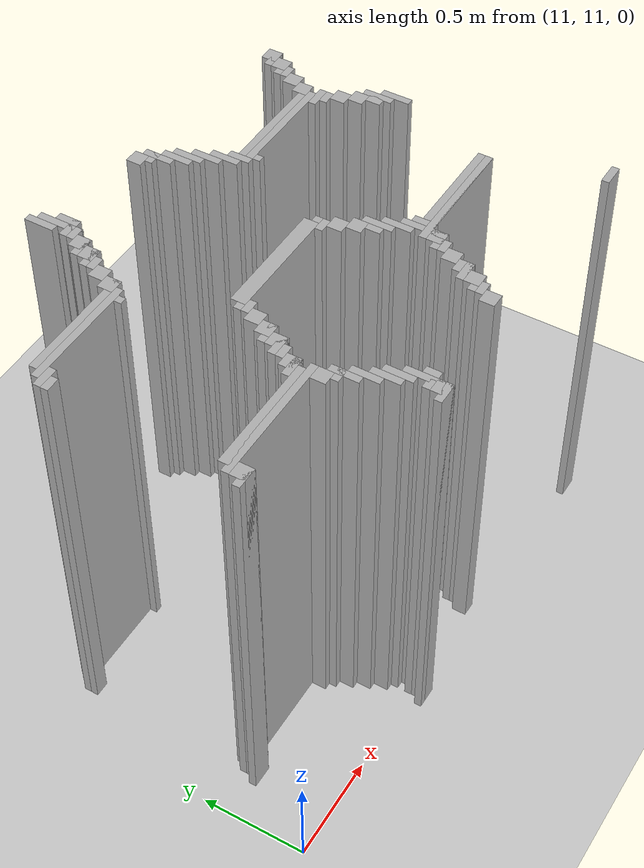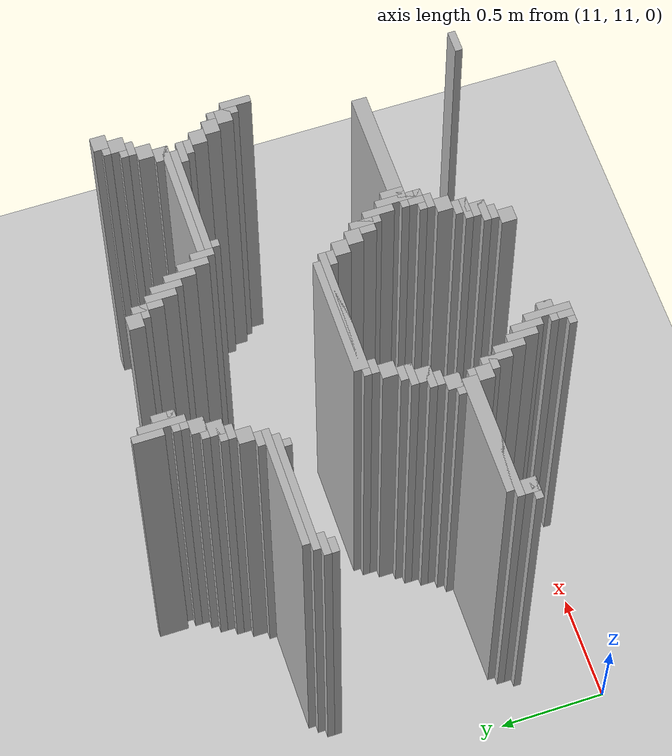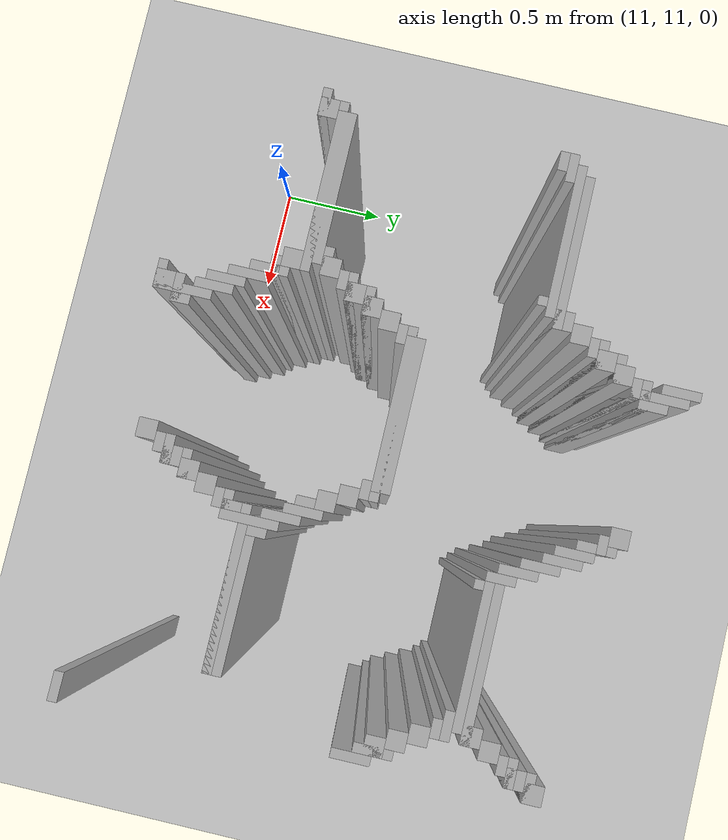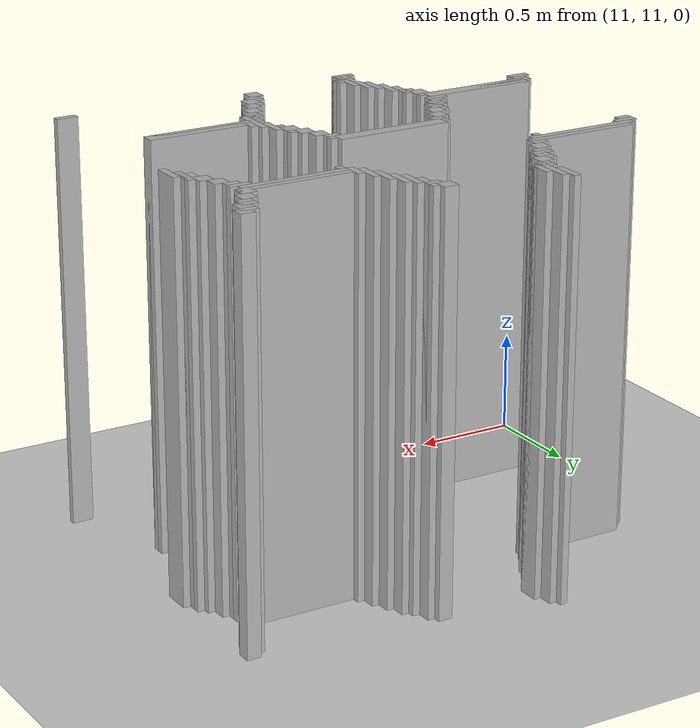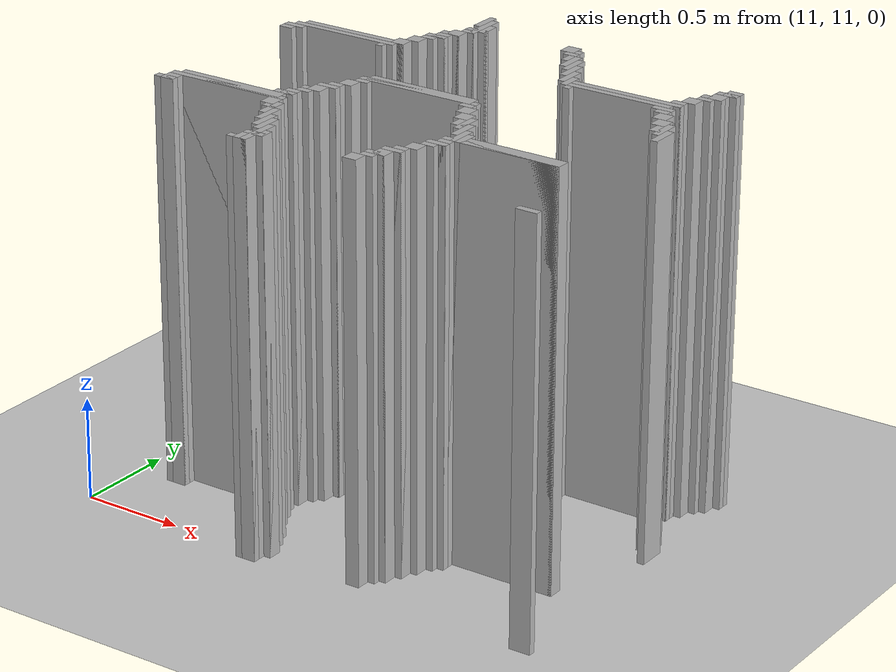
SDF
<sdf version="1.6">
 <world name="slam_world">
  <model name="ground_plane">
   <static>true</static>
   <link name="link">
    <collision name="collision">
     <geometry><plane><normal>0 0 1</normal><size>100 100</size></plane></geometry>
    </collision>
    <visual name="visual">
     <geometry><plane><normal>0 0 1</normal><size>100 100</size></plane></geometry>
     <material>
      <ambient>0.8 0.8 0.8 1</ambient>
      <diffuse>0.8 0.8 0.8 1</diffuse>
      <specular>0.8 0.8 0.8 1</specular>
     </material>
    </visual>
   </link>
  </model>
  <model name="wall_1478">
   <static>true</static>
   <pose>11.95475638051044 12.807424593967516 1.0 0 0 0</pose>
   <link name="link">
    <collision name="collision">
     <geometry><box><size>0.03480278422273782 0.13921113689095127 2.0</size></box></geometry>
    </collision>
    <visual name="visual">
     <geometry><box><size>0.03480278422273782 0.13921113689095127 2.0</size></box></geometry>
     <material><ambient>0.5 0.5 0.5 1</ambient><diffuse>0.7 0.7 0.7 1</diffuse></material>
    </visual>
   </link>
  </model>
  <model name="wall_1493">
   <static>true</static>
   <pose>11.989559164733178 12.737819025522041 1.0 0 0 0</pose>
   <link name="link">
    <collision name="collision">
     <geometry><box><size>0.03480278422273782 0.2088167053364269 2.0</size></box></geometry>
    </collision>
    <visual name="visual">
     <geometry><box><size>0.03480278422273782 0.2088167053364269 2.0</size></box></geometry>
     <material><ambient>0.5 0.5 0.5 1</ambient><diffuse>0.7 0.7 0.7 1</diffuse></material>
    </visual>
   </link>
  </model>
  <model name="wall_1516">
   <static>true</static>
   <pose>12.024361948955915 12.720417633410673 1.0 0 0 0</pose>
   <link name="link">
    <collision name="collision">
     <geometry><box><size>0.03480278422273782 0.10440835266821345 2.0</size></box></geometry>
    </collision>
    <visual name="visual">
     <geometry><box><size>0.03480278422273782 0.10440835266821345 2.0</size></box></geometry>
     <material><ambient>0.5 0.5 0.5 1</ambient><diffuse>0.7 0.7 0.7 1</diffuse></material>
    </visual>
   </link>
  </model>
  <model name="wall_1528">
   <static>true</static>
   <pose>12.494199535962876 12.703016241299304 1.0 0 0 0</pose>
   <link name="link">
    <collision name="collision">
     <geometry><box><size>0.06960556844547564 0.06960556844547564 2.0</size></box></geometry>
    </collision>
    <visual name="visual">
     <geometry><box><size>0.06960556844547564 0.06960556844547564 2.0</size></box></geometry>
     <material><ambient>0.5 0.5 0.5 1</ambient><diffuse>0.7 0.7 0.7 1</diffuse></material>
    </visual>
   </link>
  </model>
  <model name="wall_1539">
   <static>true</static>
   <pose>11.989559164733178 12.685614849187935 1.0 0 0 0</pose>
   <link name="link">
    <collision name="collision">
     <geometry><box><size>0.10440835266821345 0.03480278422273782 2.0</size></box></geometry>
    </collision>
    <visual name="visual">
     <geometry><box><size>0.10440835266821345 0.03480278422273782 2.0</size></box></geometry>
     <material><ambient>0.5 0.5 0.5 1</ambient><diffuse>0.7 0.7 0.7 1</diffuse></material>
    </visual>
   </link>
  </model>
  <model name="wall_1540">
   <static>true</static>
   <pose>12.546403712296984 12.633410672853827 1.0 0 0 0</pose>
   <link name="link">
    <collision name="collision">
     <geometry><box><size>0.03480278422273782 0.13921113689095127 2.0</size></box></geometry>
    </collision>
    <visual name="visual">
     <geometry><box><size>0.03480278422273782 0.13921113689095127 2.0</size></box></geometry>
     <material><ambient>0.5 0.5 0.5 1</ambient><diffuse>0.7 0.7 0.7 1</diffuse></material>
    </visual>
   </link>
  </model>
  <model name="wall_1552">
   <static>true</static>
   <pose>11.97215777262181 12.650812064965196 1.0 0 0 0</pose>
   <link name="link">
    <collision name="collision">
     <geometry><box><size>0.06960556844547564 0.03480278422273782 2.0</size></box></geometry>
    </collision>
    <visual name="visual">
     <geometry><box><size>0.06960556844547564 0.03480278422273782 2.0</size></box></geometry>
     <material><ambient>0.5 0.5 0.5 1</ambient><diffuse>0.7 0.7 0.7 1</diffuse></material>
    </visual>
   </link>
  </model>
  <model name="wall_1553">
   <static>true</static>
   <pose>12.529002320185615 12.650812064965196 1.0 0 0 0</pose>
   <link name="link">
    <collision name="collision">
     <geometry><box><size>0.06960556844547564 0.03480278422273782 2.0</size></box></geometry>
    </collision>
    <visual name="visual">
     <geometry><box><size>0.06960556844547564 0.03480278422273782 2.0</size></box></geometry>
     <material><ambient>0.5 0.5 0.5 1</ambient><diffuse>0.7 0.7 0.7 1</diffuse></material>
    </visual>
   </link>
  </model>
  <model name="wall_1564">
   <static>true</static>
   <pose>11.937354988399072 12.59860788863109 1.0 0 0 0</pose>
   <link name="link">
    <collision name="collision">
     <geometry><box><size>0.06960556844547564 0.06960556844547564 2.0</size></box></geometry>
    </collision>
    <visual name="visual">
     <geometry><box><size>0.06960556844547564 0.06960556844547564 2.0</size></box></geometry>
     <material><ambient>0.5 0.5 0.5 1</ambient><diffuse>0.7 0.7 0.7 1</diffuse></material>
    </visual>
   </link>
  </model>
  <model name="wall_1565">
   <static>true</static>
   <pose>12.581206496519721 12.563805104408353 1.0 0 0 0</pose>
   <link name="link">
    <collision name="collision">
     <geometry><box><size>0.03480278422273782 0.13921113689095127 2.0</size></box></geometry>
    </collision>
    <visual name="visual">
     <geometry><box><size>0.03480278422273782 0.13921113689095127 2.0</size></box></geometry>
     <material><ambient>0.5 0.5 0.5 1</ambient><diffuse>0.7 0.7 0.7 1</diffuse></material>
    </visual>
   </link>
  </model>
  <model name="wall_1566">
   <static>true</static>
   <pose>13.39907192575406 12.59860788863109 1.0 0 0 0</pose>
   <link name="link">
    <collision name="collision">
     <geometry><box><size>0.06960556844547564 0.06960556844547564 2.0</size></box></geometry>
    </collision>
    <visual name="visual">
     <geometry><box><size>0.06960556844547564 0.06960556844547564 2.0</size></box></geometry>
     <material><ambient>0.5 0.5 0.5 1</ambient><diffuse>0.7 0.7 0.7 1</diffuse></material>
    </visual>
   </link>
  </model>
  <model name="wall_1577">
   <static>true</static>
   <pose>11.919953596287703 12.581206496519721 1.0 0 0 0</pose>
   <link name="link">
    <collision name="collision">
     <geometry><box><size>0.10440835266821345 0.03480278422273782 2.0</size></box></geometry>
    </collision>
    <visual name="visual">
     <geometry><box><size>0.10440835266821345 0.03480278422273782 2.0</size></box></geometry>
     <material><ambient>0.5 0.5 0.5 1</ambient><diffuse>0.7 0.7 0.7 1</diffuse></material>
    </visual>
   </link>
  </model>
  <model name="wall_1578">
   <static>true</static>
   <pose>12.616009280742459 12.529002320185615 1.0 0 0 0</pose>
   <link name="link">
    <collision name="collision">
     <geometry><box><size>0.03480278422273782 0.13921113689095127 2.0</size></box></geometry>
    </collision>
    <visual name="visual">
     <geometry><box><size>0.03480278422273782 0.13921113689095127 2.0</size></box></geometry>
     <material><ambient>0.5 0.5 0.5 1</ambient><diffuse>0.7 0.7 0.7 1</diffuse></material>
    </visual>
   </link>
  </model>
  <model name="wall_1579">
   <static>true</static>
   <pose>13.38167053364269 12.581206496519721 1.0 0 0 0</pose>
   <link name="link">
    <collision name="collision">
     <geometry><box><size>0.10440835266821345 0.03480278422273782 2.0</size></box></geometry>
    </collision>
    <visual name="visual">
     <geometry><box><size>0.10440835266821345 0.03480278422273782 2.0</size></box></geometry>
     <material><ambient>0.5 0.5 0.5 1</ambient><diffuse>0.7 0.7 0.7 1</diffuse></material>
    </visual>
   </link>
  </model>
  <model name="wall_1589">
   <static>true</static>
   <pose>11.902552204176333 12.529002320185615 1.0 0 0 0</pose>
   <link name="link">
    <collision name="collision">
     <geometry><box><size>0.06960556844547564 0.06960556844547564 2.0</size></box></geometry>
    </collision>
    <visual name="visual">
     <geometry><box><size>0.06960556844547564 0.06960556844547564 2.0</size></box></geometry>
     <material><ambient>0.5 0.5 0.5 1</ambient><diffuse>0.7 0.7 0.7 1</diffuse></material>
    </visual>
   </link>
  </model>
  <model name="wall_1590">
   <static>true</static>
   <pose>13.364269141531322 12.529002320185615 1.0 0 0 0</pose>
   <link name="link">
    <collision name="collision">
     <geometry><box><size>0.06960556844547564 0.06960556844547564 2.0</size></box></geometry>
    </collision>
    <visual name="visual">
     <geometry><box><size>0.06960556844547564 0.06960556844547564 2.0</size></box></geometry>
     <material><ambient>0.5 0.5 0.5 1</ambient><diffuse>0.7 0.7 0.7 1</diffuse></material>
    </visual>
   </link>
  </model>
  <model name="wall_1601">
   <static>true</static>
   <pose>11.885150812064964 12.511600928074245 1.0 0 0 0</pose>
   <link name="link">
    <collision name="collision">
     <geometry><box><size>0.10440835266821345 0.03480278422273782 2.0</size></box></geometry>
    </collision>
    <visual name="visual">
     <geometry><box><size>0.10440835266821345 0.03480278422273782 2.0</size></box></geometry>
     <material><ambient>0.5 0.5 0.5 1</ambient><diffuse>0.7 0.7 0.7 1</diffuse></material>
    </visual>
   </link>
  </model>
  <model name="wall_1602">
   <static>true</static>
   <pose>12.650812064965196 12.459396751740138 1.0 0 0 0</pose>
   <link name="link">
    <collision name="collision">
     <geometry><box><size>0.03480278422273782 0.13921113689095127 2.0</size></box></geometry>
    </collision>
    <visual name="visual">
     <geometry><box><size>0.03480278422273782 0.13921113689095127 2.0</size></box></geometry>
     <material><ambient>0.5 0.5 0.5 1</ambient><diffuse>0.7 0.7 0.7 1</diffuse></material>
    </visual>
   </link>
  </model>
  <model name="wall_1603">
   <static>true</static>
   <pose>13.346867749419953 12.511600928074245 1.0 0 0 0</pose>
   <link name="link">
    <collision name="collision">
     <geometry><box><size>0.10440835266821345 0.03480278422273782 2.0</size></box></geometry>
    </collision>
    <visual name="visual">
     <geometry><box><size>0.10440835266821345 0.03480278422273782 2.0</size></box></geometry>
     <material><ambient>0.5 0.5 0.5 1</ambient><diffuse>0.7 0.7 0.7 1</diffuse></material>
    </visual>
   </link>
  </model>
  <model name="wall_1609">
   <static>true</static>
   <pose>11.867749419953595 12.476798143851507 1.0 0 0 0</pose>
   <link name="link">
    <collision name="collision">
     <geometry><box><size>0.06960556844547564 0.03480278422273782 2.0</size></box></geometry>
    </collision>
    <visual name="visual">
     <geometry><box><size>0.06960556844547564 0.03480278422273782 2.0</size></box></geometry>
     <material><ambient>0.5 0.5 0.5 1</ambient><diffuse>0.7 0.7 0.7 1</diffuse></material>
    </visual>
   </link>
  </model>
  <model name="wall_1610">
   <static>true</static>
   <pose>13.329466357308585 12.476798143851507 1.0 0 0 0</pose>
   <link name="link">
    <collision name="collision">
     <geometry><box><size>0.06960556844547564 0.03480278422273782 2.0</size></box></geometry>
    </collision>
    <visual name="visual">
     <geometry><box><size>0.06960556844547564 0.03480278422273782 2.0</size></box></geometry>
     <material><ambient>0.5 0.5 0.5 1</ambient><diffuse>0.7 0.7 0.7 1</diffuse></material>
    </visual>
   </link>
  </model>
  <model name="wall_1621">
   <static>true</static>
   <pose>11.832946635730858 12.424593967517401 1.0 0 0 0</pose>
   <link name="link">
    <collision name="collision">
     <geometry><box><size>0.06960556844547564 0.06960556844547564 2.0</size></box></geometry>
    </collision>
    <visual name="visual">
     <geometry><box><size>0.06960556844547564 0.06960556844547564 2.0</size></box></geometry>
     <material><ambient>0.5 0.5 0.5 1</ambient><diffuse>0.7 0.7 0.7 1</diffuse></material>
    </visual>
   </link>
  </model>
  <model name="wall_1622">
   <static>true</static>
   <pose>12.685614849187935 12.389791183294664 1.0 0 0 0</pose>
   <link name="link">
    <collision name="collision">
     <geometry><box><size>0.03480278422273782 0.13921113689095127 2.0</size></box></geometry>
    </collision>
    <visual name="visual">
     <geometry><box><size>0.03480278422273782 0.13921113689095127 2.0</size></box></geometry>
     <material><ambient>0.5 0.5 0.5 1</ambient><diffuse>0.7 0.7 0.7 1</diffuse></material>
    </visual>
   </link>
  </model>
  <model name="wall_1623">
   <static>true</static>
   <pose>13.294663573085847 12.424593967517401 1.0 0 0 0</pose>
   <link name="link">
    <collision name="collision">
     <geometry><box><size>0.06960556844547564 0.06960556844547564 2.0</size></box></geometry>
    </collision>
    <visual name="visual">
     <geometry><box><size>0.06960556844547564 0.06960556844547564 2.0</size></box></geometry>
     <material><ambient>0.5 0.5 0.5 1</ambient><diffuse>0.7 0.7 0.7 1</diffuse></material>
    </visual>
   </link>
  </model>
  <model name="wall_1634">
   <static>true</static>
   <pose>11.79814385150812 12.354988399071924 1.0 0 0 0</pose>
   <link name="link">
    <collision name="collision">
     <geometry><box><size>0.06960556844547564 0.06960556844547564 2.0</size></box></geometry>
    </collision>
    <visual name="visual">
     <geometry><box><size>0.06960556844547564 0.06960556844547564 2.0</size></box></geometry>
     <material><ambient>0.5 0.5 0.5 1</ambient><diffuse>0.7 0.7 0.7 1</diffuse></material>
    </visual>
   </link>
  </model>
  <model name="wall_1635">
   <static>true</static>
   <pose>12.720417633410673 12.337587006960556 1.0 0 0 0</pose>
   <link name="link">
    <collision name="collision">
     <geometry><box><size>0.03480278422273782 0.10440835266821345 2.0</size></box></geometry>
    </collision>
    <visual name="visual">
     <geometry><box><size>0.03480278422273782 0.10440835266821345 2.0</size></box></geometry>
     <material><ambient>0.5 0.5 0.5 1</ambient><diffuse>0.7 0.7 0.7 1</diffuse></material>
    </visual>
   </link>
  </model>
  <model name="wall_1636">
   <static>true</static>
   <pose>13.259860788863108 12.354988399071924 1.0 0 0 0</pose>
   <link name="link">
    <collision name="collision">
     <geometry><box><size>0.06960556844547564 0.06960556844547564 2.0</size></box></geometry>
    </collision>
    <visual name="visual">
     <geometry><box><size>0.06960556844547564 0.06960556844547564 2.0</size></box></geometry>
     <material><ambient>0.5 0.5 0.5 1</ambient><diffuse>0.7 0.7 0.7 1</diffuse></material>
    </visual>
   </link>
  </model>
  <model name="wall_1647">
   <static>true</static>
   <pose>11.554524361948955 12.337587006960556 1.0 0 0 0</pose>
   <link name="link">
    <collision name="collision">
     <geometry><box><size>0.5568445475638051 0.03480278422273782 2.0</size></box></geometry>
    </collision>
    <visual name="visual">
     <geometry><box><size>0.5568445475638051 0.03480278422273782 2.0</size></box></geometry>
     <material><ambient>0.5 0.5 0.5 1</ambient><diffuse>0.7 0.7 0.7 1</diffuse></material>
    </visual>
   </link>
  </model>
  <model name="wall_1648">
   <static>true</static>
   <pose>13.016241299303944 12.337587006960556 1.0 0 0 0</pose>
   <link name="link">
    <collision name="collision">
     <geometry><box><size>0.5568445475638051 0.03480278422273782 2.0</size></box></geometry>
    </collision>
    <visual name="visual">
     <geometry><box><size>0.5568445475638051 0.03480278422273782 2.0</size></box></geometry>
     <material><ambient>0.5 0.5 0.5 1</ambient><diffuse>0.7 0.7 0.7 1</diffuse></material>
    </visual>
   </link>
  </model>
  <model name="wall_1658">
   <static>true</static>
   <pose>11.519721577726218 12.302784222737818 1.0 0 0 0</pose>
   <link name="link">
    <collision name="collision">
     <geometry><box><size>0.5568445475638051 0.03480278422273782 2.0</size></box></geometry>
    </collision>
    <visual name="visual">
     <geometry><box><size>0.5568445475638051 0.03480278422273782 2.0</size></box></geometry>
     <material><ambient>0.5 0.5 0.5 1</ambient><diffuse>0.7 0.7 0.7 1</diffuse></material>
    </visual>
   </link>
  </model>
  <model name="wall_1659">
   <static>true</static>
   <pose>12.998839907192576 12.302784222737818 1.0 0 0 0</pose>
   <link name="link">
    <collision name="collision">
     <geometry><box><size>0.5220417633410672 0.03480278422273782 2.0</size></box></geometry>
    </collision>
    <visual name="visual">
     <geometry><box><size>0.5220417633410672 0.03480278422273782 2.0</size></box></geometry>
     <material><ambient>0.5 0.5 0.5 1</ambient><diffuse>0.7 0.7 0.7 1</diffuse></material>
    </visual>
   </link>
  </model>
  <model name="wall_1675">
   <static>true</static>
   <pose>11.258700696055683 12.267981438515081 1.0 0 0 0</pose>
   <link name="link">
    <collision name="collision">
     <geometry><box><size>0.10440835266821345 0.03480278422273782 2.0</size></box></geometry>
    </collision>
    <visual name="visual">
     <geometry><box><size>0.10440835266821345 0.03480278422273782 2.0</size></box></geometry>
     <material><ambient>0.5 0.5 0.5 1</ambient><diffuse>0.7 0.7 0.7 1</diffuse></material>
    </visual>
   </link>
  </model>
  <model name="wall_1676">
   <static>true</static>
   <pose>11.745939675174013 12.267981438515081 1.0 0 0 0</pose>
   <link name="link">
    <collision name="collision">
     <geometry><box><size>0.03480278422273782 0.03480278422273782 2.0</size></box></geometry>
    </collision>
    <visual name="visual">
     <geometry><box><size>0.03480278422273782 0.03480278422273782 2.0</size></box></geometry>
     <material><ambient>0.5 0.5 0.5 1</ambient><diffuse>0.7 0.7 0.7 1</diffuse></material>
    </visual>
   </link>
  </model>
  <model name="wall_1677">
   <static>true</static>
   <pose>12.75522041763341 12.267981438515081 1.0 0 0 0</pose>
   <link name="link">
    <collision name="collision">
     <geometry><box><size>0.03480278422273782 0.03480278422273782 2.0</size></box></geometry>
    </collision>
    <visual name="visual">
     <geometry><box><size>0.03480278422273782 0.03480278422273782 2.0</size></box></geometry>
     <material><ambient>0.5 0.5 0.5 1</ambient><diffuse>0.7 0.7 0.7 1</diffuse></material>
    </visual>
   </link>
  </model>
  <model name="wall_1678">
   <static>true</static>
   <pose>13.24245939675174 12.267981438515081 1.0 0 0 0</pose>
   <link name="link">
    <collision name="collision">
     <geometry><box><size>0.10440835266821345 0.03480278422273782 2.0</size></box></geometry>
    </collision>
    <visual name="visual">
     <geometry><box><size>0.10440835266821345 0.03480278422273782 2.0</size></box></geometry>
     <material><ambient>0.5 0.5 0.5 1</ambient><diffuse>0.7 0.7 0.7 1</diffuse></material>
    </visual>
   </link>
  </model>
  <model name="wall_1691">
   <static>true</static>
   <pose>11.241299303944315 12.233178654292344 1.0 0 0 0</pose>
   <link name="link">
    <collision name="collision">
     <geometry><box><size>0.06960556844547564 0.03480278422273782 2.0</size></box></geometry>
    </collision>
    <visual name="visual">
     <geometry><box><size>0.06960556844547564 0.03480278422273782 2.0</size></box></geometry>
     <material><ambient>0.5 0.5 0.5 1</ambient><diffuse>0.7 0.7 0.7 1</diffuse></material>
    </visual>
   </link>
  </model>
  <model name="wall_1692">
   <static>true</static>
   <pose>13.259860788863108 12.233178654292344 1.0 0 0 0</pose>
   <link name="link">
    <collision name="collision">
     <geometry><box><size>0.06960556844547564 0.03480278422273782 2.0</size></box></geometry>
    </collision>
    <visual name="visual">
     <geometry><box><size>0.06960556844547564 0.03480278422273782 2.0</size></box></geometry>
     <material><ambient>0.5 0.5 0.5 1</ambient><diffuse>0.7 0.7 0.7 1</diffuse></material>
    </visual>
   </link>
  </model>
  <model name="wall_1706">
   <static>true</static>
   <pose>13.294663573085847 12.180974477958236 1.0 0 0 0</pose>
   <link name="link">
    <collision name="collision">
     <geometry><box><size>0.06960556844547564 0.06960556844547564 2.0</size></box></geometry>
    </collision>
    <visual name="visual">
     <geometry><box><size>0.06960556844547564 0.06960556844547564 2.0</size></box></geometry>
     <material><ambient>0.5 0.5 0.5 1</ambient><diffuse>0.7 0.7 0.7 1</diffuse></material>
    </visual>
   </link>
  </model>
  <model name="wall_1720">
   <static>true</static>
   <pose>13.329466357308585 12.11136890951276 1.0 0 0 0</pose>
   <link name="link">
    <collision name="collision">
     <geometry><box><size>0.06960556844547564 0.06960556844547564 2.0</size></box></geometry>
    </collision>
    <visual name="visual">
     <geometry><box><size>0.06960556844547564 0.06960556844547564 2.0</size></box></geometry>
     <material><ambient>0.5 0.5 0.5 1</ambient><diffuse>0.7 0.7 0.7 1</diffuse></material>
    </visual>
   </link>
  </model>
  <model name="wall_1734">
   <static>true</static>
   <pose>13.38167053364269 12.041763341067284 1.0 0 0 0</pose>
   <link name="link">
    <collision name="collision">
     <geometry><box><size>0.03480278422273782 0.13921113689095127 2.0</size></box></geometry>
    </collision>
    <visual name="visual">
     <geometry><box><size>0.03480278422273782 0.13921113689095127 2.0</size></box></geometry>
     <material><ambient>0.5 0.5 0.5 1</ambient><diffuse>0.7 0.7 0.7 1</diffuse></material>
    </visual>
   </link>
  </model>
  <model name="wall_1745">
   <static>true</static>
   <pose>13.364269141531322 12.041763341067284 1.0 0 0 0</pose>
   <link name="link">
    <collision name="collision">
     <geometry><box><size>0.06960556844547564 0.06960556844547564 2.0</size></box></geometry>
    </collision>
    <visual name="visual">
     <geometry><box><size>0.06960556844547564 0.06960556844547564 2.0</size></box></geometry>
     <material><ambient>0.5 0.5 0.5 1</ambient><diffuse>0.7 0.7 0.7 1</diffuse></material>
    </visual>
   </link>
  </model>
  <model name="wall_1758">
   <static>true</static>
   <pose>13.416473317865428 11.97215777262181 1.0 0 0 0</pose>
   <link name="link">
    <collision name="collision">
     <geometry><box><size>0.03480278422273782 0.13921113689095127 2.0</size></box></geometry>
    </collision>
    <visual name="visual">
     <geometry><box><size>0.03480278422273782 0.13921113689095127 2.0</size></box></geometry>
     <material><ambient>0.5 0.5 0.5 1</ambient><diffuse>0.7 0.7 0.7 1</diffuse></material>
    </visual>
   </link>
  </model>
  <model name="wall_1806">
   <static>true</static>
   <pose>12.250580046403712 11.867749419953595 1.0 0 0 0</pose>
   <link name="link">
    <collision name="collision">
     <geometry><box><size>0.5568445475638051 0.06960556844547564 2.0</size></box></geometry>
    </collision>
    <visual name="visual">
     <geometry><box><size>0.5568445475638051 0.06960556844547564 2.0</size></box></geometry>
     <material><ambient>0.5 0.5 0.5 1</ambient><diffuse>0.7 0.7 0.7 1</diffuse></material>
    </visual>
   </link>
  </model>
  <model name="wall_1818">
   <static>true</static>
   <pose>12.250580046403712 11.850348027842227 1.0 0 0 0</pose>
   <link name="link">
    <collision name="collision">
     <geometry><box><size>0.6264501160092807 0.03480278422273782 2.0</size></box></geometry>
    </collision>
    <visual name="visual">
     <geometry><box><size>0.6264501160092807 0.03480278422273782 2.0</size></box></geometry>
     <material><ambient>0.5 0.5 0.5 1</ambient><diffuse>0.7 0.7 0.7 1</diffuse></material>
    </visual>
   </link>
  </model>
  <model name="wall_1831">
   <static>true</static>
   <pose>11.97215777262181 11.81554524361949 1.0 0 0 0</pose>
   <link name="link">
    <collision name="collision">
     <geometry><box><size>0.06960556844547564 0.03480278422273782 2.0</size></box></geometry>
    </collision>
    <visual name="visual">
     <geometry><box><size>0.06960556844547564 0.03480278422273782 2.0</size></box></geometry>
     <material><ambient>0.5 0.5 0.5 1</ambient><diffuse>0.7 0.7 0.7 1</diffuse></material>
    </visual>
   </link>
  </model>
  <model name="wall_1832">
   <static>true</static>
   <pose>12.529002320185615 11.81554524361949 1.0 0 0 0</pose>
   <link name="link">
    <collision name="collision">
     <geometry><box><size>0.06960556844547564 0.03480278422273782 2.0</size></box></geometry>
    </collision>
    <visual name="visual">
     <geometry><box><size>0.06960556844547564 0.03480278422273782 2.0</size></box></geometry>
     <material><ambient>0.5 0.5 0.5 1</ambient><diffuse>0.7 0.7 0.7 1</diffuse></material>
    </visual>
   </link>
  </model>
  <model name="wall_1845">
   <static>true</static>
   <pose>11.937354988399072 11.763341067285383 1.0 0 0 0</pose>
   <link name="link">
    <collision name="collision">
     <geometry><box><size>0.06960556844547564 0.06960556844547564 2.0</size></box></geometry>
    </collision>
    <visual name="visual">
     <geometry><box><size>0.06960556844547564 0.06960556844547564 2.0</size></box></geometry>
     <material><ambient>0.5 0.5 0.5 1</ambient><diffuse>0.7 0.7 0.7 1</diffuse></material>
    </visual>
   </link>
  </model>
  <model name="wall_1846">
   <static>true</static>
   <pose>12.563805104408353 11.763341067285383 1.0 0 0 0</pose>
   <link name="link">
    <collision name="collision">
     <geometry><box><size>0.06960556844547564 0.06960556844547564 2.0</size></box></geometry>
    </collision>
    <visual name="visual">
     <geometry><box><size>0.06960556844547564 0.06960556844547564 2.0</size></box></geometry>
     <material><ambient>0.5 0.5 0.5 1</ambient><diffuse>0.7 0.7 0.7 1</diffuse></material>
    </visual>
   </link>
  </model>
  <model name="wall_1859">
   <static>true</static>
   <pose>11.902552204176333 11.693735498839906 1.0 0 0 0</pose>
   <link name="link">
    <collision name="collision">
     <geometry><box><size>0.06960556844547564 0.06960556844547564 2.0</size></box></geometry>
    </collision>
    <visual name="visual">
     <geometry><box><size>0.06960556844547564 0.06960556844547564 2.0</size></box></geometry>
     <material><ambient>0.5 0.5 0.5 1</ambient><diffuse>0.7 0.7 0.7 1</diffuse></material>
    </visual>
   </link>
  </model>
  <model name="wall_1860">
   <static>true</static>
   <pose>12.59860788863109 11.693735498839906 1.0 0 0 0</pose>
   <link name="link">
    <collision name="collision">
     <geometry><box><size>0.06960556844547564 0.06960556844547564 2.0</size></box></geometry>
    </collision>
    <visual name="visual">
     <geometry><box><size>0.06960556844547564 0.06960556844547564 2.0</size></box></geometry>
     <material><ambient>0.5 0.5 0.5 1</ambient><diffuse>0.7 0.7 0.7 1</diffuse></material>
    </visual>
   </link>
  </model>
  <model name="wall_1873">
   <static>true</static>
   <pose>11.885150812064964 11.676334106728538 1.0 0 0 0</pose>
   <link name="link">
    <collision name="collision">
     <geometry><box><size>0.10440835266821345 0.03480278422273782 2.0</size></box></geometry>
    </collision>
    <visual name="visual">
     <geometry><box><size>0.10440835266821345 0.03480278422273782 2.0</size></box></geometry>
     <material><ambient>0.5 0.5 0.5 1</ambient><diffuse>0.7 0.7 0.7 1</diffuse></material>
    </visual>
   </link>
  </model>
  <model name="wall_1874">
   <static>true</static>
   <pose>12.650812064965196 11.624129930394432 1.0 0 0 0</pose>
   <link name="link">
    <collision name="collision">
     <geometry><box><size>0.03480278422273782 0.13921113689095127 2.0</size></box></geometry>
    </collision>
    <visual name="visual">
     <geometry><box><size>0.03480278422273782 0.13921113689095127 2.0</size></box></geometry>
     <material><ambient>0.5 0.5 0.5 1</ambient><diffuse>0.7 0.7 0.7 1</diffuse></material>
    </visual>
   </link>
  </model>
  <model name="wall_1883">
   <static>true</static>
   <pose>11.867749419953595 11.624129930394432 1.0 0 0 0</pose>
   <link name="link">
    <collision name="collision">
     <geometry><box><size>0.06960556844547564 0.06960556844547564 2.0</size></box></geometry>
    </collision>
    <visual name="visual">
     <geometry><box><size>0.06960556844547564 0.06960556844547564 2.0</size></box></geometry>
     <material><ambient>0.5 0.5 0.5 1</ambient><diffuse>0.7 0.7 0.7 1</diffuse></material>
    </visual>
   </link>
  </model>
  <model name="wall_1884">
   <static>true</static>
   <pose>12.633410672853827 11.624129930394432 1.0 0 0 0</pose>
   <link name="link">
    <collision name="collision">
     <geometry><box><size>0.06960556844547564 0.06960556844547564 2.0</size></box></geometry>
    </collision>
    <visual name="visual">
     <geometry><box><size>0.06960556844547564 0.06960556844547564 2.0</size></box></geometry>
     <material><ambient>0.5 0.5 0.5 1</ambient><diffuse>0.7 0.7 0.7 1</diffuse></material>
    </visual>
   </link>
  </model>
  <model name="wall_1896">
   <static>true</static>
   <pose>11.850348027842227 11.606728538283063 1.0 0 0 0</pose>
   <link name="link">
    <collision name="collision">
     <geometry><box><size>0.10440835266821345 0.03480278422273782 2.0</size></box></geometry>
    </collision>
    <visual name="visual">
     <geometry><box><size>0.10440835266821345 0.03480278422273782 2.0</size></box></geometry>
     <material><ambient>0.5 0.5 0.5 1</ambient><diffuse>0.7 0.7 0.7 1</diffuse></material>
    </visual>
   </link>
  </model>
  <model name="wall_1897">
   <static>true</static>
   <pose>12.685614849187935 11.554524361948955 1.0 0 0 0</pose>
   <link name="link">
    <collision name="collision">
     <geometry><box><size>0.03480278422273782 0.13921113689095127 2.0</size></box></geometry>
    </collision>
    <visual name="visual">
     <geometry><box><size>0.03480278422273782 0.13921113689095127 2.0</size></box></geometry>
     <material><ambient>0.5 0.5 0.5 1</ambient><diffuse>0.7 0.7 0.7 1</diffuse></material>
    </visual>
   </link>
  </model>
  <model name="wall_1904">
   <static>true</static>
   <pose>11.832946635730858 11.571925754060324 1.0 0 0 0</pose>
   <link name="link">
    <collision name="collision">
     <geometry><box><size>0.06960556844547564 0.03480278422273782 2.0</size></box></geometry>
    </collision>
    <visual name="visual">
     <geometry><box><size>0.06960556844547564 0.03480278422273782 2.0</size></box></geometry>
     <material><ambient>0.5 0.5 0.5 1</ambient><diffuse>0.7 0.7 0.7 1</diffuse></material>
    </visual>
   </link>
  </model>
  <model name="wall_1916">
   <static>true</static>
   <pose>11.79814385150812 11.519721577726218 1.0 0 0 0</pose>
   <link name="link">
    <collision name="collision">
     <geometry><box><size>0.06960556844547564 0.06960556844547564 2.0</size></box></geometry>
    </collision>
    <visual name="visual">
     <geometry><box><size>0.06960556844547564 0.06960556844547564 2.0</size></box></geometry>
     <material><ambient>0.5 0.5 0.5 1</ambient><diffuse>0.7 0.7 0.7 1</diffuse></material>
    </visual>
   </link>
  </model>
  <model name="wall_1917">
   <static>true</static>
   <pose>12.720417633410673 11.450116009280743 1.0 0 0 0</pose>
   <link name="link">
    <collision name="collision">
     <geometry><box><size>0.03480278422273782 0.2088167053364269 2.0</size></box></geometry>
    </collision>
    <visual name="visual">
     <geometry><box><size>0.03480278422273782 0.2088167053364269 2.0</size></box></geometry>
     <material><ambient>0.5 0.5 0.5 1</ambient><diffuse>0.7 0.7 0.7 1</diffuse></material>
    </visual>
   </link>
  </model>
  <model name="wall_1929">
   <static>true</static>
   <pose>11.780742459396752 11.502320185614849 1.0 0 0 0</pose>
   <link name="link">
    <collision name="collision">
     <geometry><box><size>0.10440835266821345 0.03480278422273782 2.0</size></box></geometry>
    </collision>
    <visual name="visual">
     <geometry><box><size>0.10440835266821345 0.03480278422273782 2.0</size></box></geometry>
     <material><ambient>0.5 0.5 0.5 1</ambient><diffuse>0.7 0.7 0.7 1</diffuse></material>
    </visual>
   </link>
  </model>
  <model name="wall_1930">
   <static>true</static>
   <pose>12.75522041763341 11.467517401392112 1.0 0 0 0</pose>
   <link name="link">
    <collision name="collision">
     <geometry><box><size>0.03480278422273782 0.10440835266821345 2.0</size></box></geometry>
    </collision>
    <visual name="visual">
     <geometry><box><size>0.03480278422273782 0.10440835266821345 2.0</size></box></geometry>
     <material><ambient>0.5 0.5 0.5 1</ambient><diffuse>0.7 0.7 0.7 1</diffuse></material>
    </visual>
   </link>
  </model>
  <model name="wall_1941">
   <static>true</static>
   <pose>11.519721577726218 11.450116009280743 1.0 0 0 0</pose>
   <link name="link">
    <collision name="collision">
     <geometry><box><size>0.5568445475638051 0.06960556844547564 2.0</size></box></geometry>
    </collision>
    <visual name="visual">
     <geometry><box><size>0.5568445475638051 0.06960556844547564 2.0</size></box></geometry>
     <material><ambient>0.5 0.5 0.5 1</ambient><diffuse>0.7 0.7 0.7 1</diffuse></material>
    </visual>
   </link>
  </model>
  <model name="wall_1942">
   <static>true</static>
   <pose>13.016241299303944 11.450116009280743 1.0 0 0 0</pose>
   <link name="link">
    <collision name="collision">
     <geometry><box><size>0.4872389791183295 0.06960556844547564 2.0</size></box></geometry>
    </collision>
    <visual name="visual">
     <geometry><box><size>0.4872389791183295 0.06960556844547564 2.0</size></box></geometry>
     <material><ambient>0.5 0.5 0.5 1</ambient><diffuse>0.7 0.7 0.7 1</diffuse></material>
    </visual>
   </link>
  </model>
  <model name="wall_1954">
   <static>true</static>
   <pose>11.519721577726218 11.432714617169372 1.0 0 0 0</pose>
   <link name="link">
    <collision name="collision">
     <geometry><box><size>0.6264501160092807 0.03480278422273782 2.0</size></box></geometry>
    </collision>
    <visual name="visual">
     <geometry><box><size>0.6264501160092807 0.03480278422273782 2.0</size></box></geometry>
     <material><ambient>0.5 0.5 0.5 1</ambient><diffuse>0.7 0.7 0.7 1</diffuse></material>
    </visual>
   </link>
  </model>
  <model name="wall_1955">
   <static>true</static>
   <pose>12.964037122969836 11.432714617169372 1.0 0 0 0</pose>
   <link name="link">
    <collision name="collision">
     <geometry><box><size>0.5916473317865429 0.03480278422273782 2.0</size></box></geometry>
    </collision>
    <visual name="visual">
     <geometry><box><size>0.5916473317865429 0.03480278422273782 2.0</size></box></geometry>
     <material><ambient>0.5 0.5 0.5 1</ambient><diffuse>0.7 0.7 0.7 1</diffuse></material>
    </visual>
   </link>
  </model>
  <model name="wall_1970">
   <static>true</static>
   <pose>11.241299303944315 11.380510440835266 1.0 0 0 0</pose>
   <link name="link">
    <collision name="collision">
     <geometry><box><size>0.06960556844547564 0.06960556844547564 2.0</size></box></geometry>
    </collision>
    <visual name="visual">
     <geometry><box><size>0.06960556844547564 0.06960556844547564 2.0</size></box></geometry>
     <material><ambient>0.5 0.5 0.5 1</ambient><diffuse>0.7 0.7 0.7 1</diffuse></material>
    </visual>
   </link>
  </model>
  <model name="wall_1971">
   <static>true</static>
   <pose>11.79814385150812 11.380510440835266 1.0 0 0 0</pose>
   <link name="link">
    <collision name="collision">
     <geometry><box><size>0.06960556844547564 0.06960556844547564 2.0</size></box></geometry>
    </collision>
    <visual name="visual">
     <geometry><box><size>0.06960556844547564 0.06960556844547564 2.0</size></box></geometry>
     <material><ambient>0.5 0.5 0.5 1</ambient><diffuse>0.7 0.7 0.7 1</diffuse></material>
    </visual>
   </link>
  </model>
  <model name="wall_1972">
   <static>true</static>
   <pose>12.703016241299304 11.380510440835266 1.0 0 0 0</pose>
   <link name="link">
    <collision name="collision">
     <geometry><box><size>0.06960556844547564 0.06960556844547564 2.0</size></box></geometry>
    </collision>
    <visual name="visual">
     <geometry><box><size>0.06960556844547564 0.06960556844547564 2.0</size></box></geometry>
     <material><ambient>0.5 0.5 0.5 1</ambient><diffuse>0.7 0.7 0.7 1</diffuse></material>
    </visual>
   </link>
  </model>
  <model name="wall_1987">
   <static>true</static>
   <pose>11.223897911832946 11.363109048723897 1.0 0 0 0</pose>
   <link name="link">
    <collision name="collision">
     <geometry><box><size>0.10440835266821345 0.03480278422273782 2.0</size></box></geometry>
    </collision>
    <visual name="visual">
     <geometry><box><size>0.10440835266821345 0.03480278422273782 2.0</size></box></geometry>
     <material><ambient>0.5 0.5 0.5 1</ambient><diffuse>0.7 0.7 0.7 1</diffuse></material>
    </visual>
   </link>
  </model>
  <model name="wall_1988">
   <static>true</static>
   <pose>11.850348027842227 11.310904872389791 1.0 0 0 0</pose>
   <link name="link">
    <collision name="collision">
     <geometry><box><size>0.03480278422273782 0.13921113689095127 2.0</size></box></geometry>
    </collision>
    <visual name="visual">
     <geometry><box><size>0.03480278422273782 0.13921113689095127 2.0</size></box></geometry>
     <material><ambient>0.5 0.5 0.5 1</ambient><diffuse>0.7 0.7 0.7 1</diffuse></material>
    </visual>
   </link>
  </model>
  <model name="wall_1989">
   <static>true</static>
   <pose>12.685614849187935 11.363109048723897 1.0 0 0 0</pose>
   <link name="link">
    <collision name="collision">
     <geometry><box><size>0.10440835266821345 0.03480278422273782 2.0</size></box></geometry>
    </collision>
    <visual name="visual">
     <geometry><box><size>0.10440835266821345 0.03480278422273782 2.0</size></box></geometry>
     <material><ambient>0.5 0.5 0.5 1</ambient><diffuse>0.7 0.7 0.7 1</diffuse></material>
    </visual>
   </link>
  </model>
  <model name="wall_2001">
   <static>true</static>
   <pose>11.832946635730858 11.32830626450116 1.0 0 0 0</pose>
   <link name="link">
    <collision name="collision">
     <geometry><box><size>0.06960556844547564 0.03480278422273782 2.0</size></box></geometry>
    </collision>
    <visual name="visual">
     <geometry><box><size>0.06960556844547564 0.03480278422273782 2.0</size></box></geometry>
     <material><ambient>0.5 0.5 0.5 1</ambient><diffuse>0.7 0.7 0.7 1</diffuse></material>
    </visual>
   </link>
  </model>
  <model name="wall_2002">
   <static>true</static>
   <pose>12.668213457076565 11.32830626450116 1.0 0 0 0</pose>
   <link name="link">
    <collision name="collision">
     <geometry><box><size>0.06960556844547564 0.03480278422273782 2.0</size></box></geometry>
    </collision>
    <visual name="visual">
     <geometry><box><size>0.06960556844547564 0.03480278422273782 2.0</size></box></geometry>
     <material><ambient>0.5 0.5 0.5 1</ambient><diffuse>0.7 0.7 0.7 1</diffuse></material>
    </visual>
   </link>
  </model>
  <model name="wall_2017">
   <static>true</static>
   <pose>11.885150812064964 11.241299303944315 1.0 0 0 0</pose>
   <link name="link">
    <collision name="collision">
     <geometry><box><size>0.03480278422273782 0.13921113689095127 2.0</size></box></geometry>
    </collision>
    <visual name="visual">
     <geometry><box><size>0.03480278422273782 0.13921113689095127 2.0</size></box></geometry>
     <material><ambient>0.5 0.5 0.5 1</ambient><diffuse>0.7 0.7 0.7 1</diffuse></material>
    </visual>
   </link>
  </model>
  <model name="wall_2018">
   <static>true</static>
   <pose>12.633410672853827 11.276102088167052 1.0 0 0 0</pose>
   <link name="link">
    <collision name="collision">
     <geometry><box><size>0.06960556844547564 0.06960556844547564 2.0</size></box></geometry>
    </collision>
    <visual name="visual">
     <geometry><box><size>0.06960556844547564 0.06960556844547564 2.0</size></box></geometry>
     <material><ambient>0.5 0.5 0.5 1</ambient><diffuse>0.7 0.7 0.7 1</diffuse></material>
    </visual>
   </link>
  </model>
  <model name="wall_2034">
   <static>true</static>
   <pose>11.919953596287703 11.17169373549884 1.0 0 0 0</pose>
   <link name="link">
    <collision name="collision">
     <geometry><box><size>0.03480278422273782 0.13921113689095127 2.0</size></box></geometry>
    </collision>
    <visual name="visual">
     <geometry><box><size>0.03480278422273782 0.13921113689095127 2.0</size></box></geometry>
     <material><ambient>0.5 0.5 0.5 1</ambient><diffuse>0.7 0.7 0.7 1</diffuse></material>
    </visual>
   </link>
  </model>
  <model name="wall_2035">
   <static>true</static>
   <pose>12.59860788863109 11.206496519721577 1.0 0 0 0</pose>
   <link name="link">
    <collision name="collision">
     <geometry><box><size>0.06960556844547564 0.06960556844547564 2.0</size></box></geometry>
    </collision>
    <visual name="visual">
     <geometry><box><size>0.06960556844547564 0.06960556844547564 2.0</size></box></geometry>
     <material><ambient>0.5 0.5 0.5 1</ambient><diffuse>0.7 0.7 0.7 1</diffuse></material>
    </visual>
   </link>
  </model>
  <model name="wall_2051">
   <static>true</static>
   <pose>11.95475638051044 11.1368909512761 1.0 0 0 0</pose>
   <link name="link">
    <collision name="collision">
     <geometry><box><size>0.03480278422273782 0.13921113689095127 2.0</size></box></geometry>
    </collision>
    <visual name="visual">
     <geometry><box><size>0.03480278422273782 0.13921113689095127 2.0</size></box></geometry>
     <material><ambient>0.5 0.5 0.5 1</ambient><diffuse>0.7 0.7 0.7 1</diffuse></material>
    </visual>
   </link>
  </model>
  <model name="wall_2052">
   <static>true</static>
   <pose>12.581206496519721 11.189095127610209 1.0 0 0 0</pose>
   <link name="link">
    <collision name="collision">
     <geometry><box><size>0.10440835266821345 0.03480278422273782 2.0</size></box></geometry>
    </collision>
    <visual name="visual">
     <geometry><box><size>0.10440835266821345 0.03480278422273782 2.0</size></box></geometry>
     <material><ambient>0.5 0.5 0.5 1</ambient><diffuse>0.7 0.7 0.7 1</diffuse></material>
    </visual>
   </link>
  </model>
  <model name="wall_2062">
   <static>true</static>
   <pose>12.563805104408353 11.1368909512761 1.0 0 0 0</pose>
   <link name="link">
    <collision name="collision">
     <geometry><box><size>0.06960556844547564 0.06960556844547564 2.0</size></box></geometry>
    </collision>
    <visual name="visual">
     <geometry><box><size>0.06960556844547564 0.06960556844547564 2.0</size></box></geometry>
     <material><ambient>0.5 0.5 0.5 1</ambient><diffuse>0.7 0.7 0.7 1</diffuse></material>
    </visual>
   </link>
  </model>
  <model name="wall_2077">
   <static>true</static>
   <pose>11.989559164733178 11.032482598607888 1.0 0 0 0</pose>
   <link name="link">
    <collision name="collision">
     <geometry><box><size>0.03480278422273782 0.2088167053364269 2.0</size></box></geometry>
    </collision>
    <visual name="visual">
     <geometry><box><size>0.03480278422273782 0.2088167053364269 2.0</size></box></geometry>
     <material><ambient>0.5 0.5 0.5 1</ambient><diffuse>0.7 0.7 0.7 1</diffuse></material>
    </visual>
   </link>
  </model>
  <model name="wall_2078">
   <static>true</static>
   <pose>12.546403712296984 11.119489559164732 1.0 0 0 0</pose>
   <link name="link">
    <collision name="collision">
     <geometry><box><size>0.10440835266821345 0.03480278422273782 2.0</size></box></geometry>
    </collision>
    <visual name="visual">
     <geometry><box><size>0.10440835266821345 0.03480278422273782 2.0</size></box></geometry>
     <material><ambient>0.5 0.5 0.5 1</ambient><diffuse>0.7 0.7 0.7 1</diffuse></material>
    </visual>
   </link>
  </model>
  <model name="wall_2088">
   <static>true</static>
   <pose>12.529002320185615 11.084686774941995 1.0 0 0 0</pose>
   <link name="link">
    <collision name="collision">
     <geometry><box><size>0.06960556844547564 0.03480278422273782 2.0</size></box></geometry>
    </collision>
    <visual name="visual">
     <geometry><box><size>0.06960556844547564 0.03480278422273782 2.0</size></box></geometry>
     <material><ambient>0.5 0.5 0.5 1</ambient><diffuse>0.7 0.7 0.7 1</diffuse></material>
    </visual>
   </link>
  </model>
  <model name="wall_2100">
   <static>true</static>
   <pose>12.024361948955915 11.032482598607888 1.0 0 0 0</pose>
   <link name="link">
    <collision name="collision">
     <geometry><box><size>0.03480278422273782 0.06960556844547564 2.0</size></box></geometry>
    </collision>
    <visual name="visual">
     <geometry><box><size>0.03480278422273782 0.06960556844547564 2.0</size></box></geometry>
     <material><ambient>0.5 0.5 0.5 1</ambient><diffuse>0.7 0.7 0.7 1</diffuse></material>
    </visual>
   </link>
  </model>
  <model name="wall_2101">
   <static>true</static>
   <pose>12.494199535962876 11.032482598607888 1.0 0 0 0</pose>
   <link name="link">
    <collision name="collision">
     <geometry><box><size>0.06960556844547564 0.06960556844547564 2.0</size></box></geometry>
    </collision>
    <visual name="visual">
     <geometry><box><size>0.06960556844547564 0.06960556844547564 2.0</size></box></geometry>
     <material><ambient>0.5 0.5 0.5 1</ambient><diffuse>0.7 0.7 0.7 1</diffuse></material>
    </visual>
   </link>
  </model>
  <model name="wall_2111">
   <static>true</static>
   <pose>11.989559164733178 11.01508120649652 1.0 0 0 0</pose>
   <link name="link">
    <collision name="collision">
     <geometry><box><size>0.10440835266821345 0.03480278422273782 2.0</size></box></geometry>
    </collision>
    <visual name="visual">
     <geometry><box><size>0.10440835266821345 0.03480278422273782 2.0</size></box></geometry>
     <material><ambient>0.5 0.5 0.5 1</ambient><diffuse>0.7 0.7 0.7 1</diffuse></material>
    </visual>
   </link>
  </model>
  <model name="wall_2123">
   <static>true</static>
   <pose>11.97215777262181 10.962877030162412 1.0 0 0 0</pose>
   <link name="link">
    <collision name="collision">
     <geometry><box><size>0.06960556844547564 0.06960556844547564 2.0</size></box></geometry>
    </collision>
    <visual name="visual">
     <geometry><box><size>0.06960556844547564 0.06960556844547564 2.0</size></box></geometry>
     <material><ambient>0.5 0.5 0.5 1</ambient><diffuse>0.7 0.7 0.7 1</diffuse></material>
    </visual>
   </link>
  </model>
  <model name="wall_2136">
   <static>true</static>
   <pose>11.95475638051044 10.945475638051043 1.0 0 0 0</pose>
   <link name="link">
    <collision name="collision">
     <geometry><box><size>0.10440835266821345 0.03480278422273782 2.0</size></box></geometry>
    </collision>
    <visual name="visual">
     <geometry><box><size>0.10440835266821345 0.03480278422273782 2.0</size></box></geometry>
     <material><ambient>0.5 0.5 0.5 1</ambient><diffuse>0.7 0.7 0.7 1</diffuse></material>
    </visual>
   </link>
  </model>
  <model name="wall_2137">
   <static>true</static>
   <pose>13.416473317865428 10.945475638051043 1.0 0 0 0</pose>
   <link name="link">
    <collision name="collision">
     <geometry><box><size>0.10440835266821345 0.03480278422273782 2.0</size></box></geometry>
    </collision>
    <visual name="visual">
     <geometry><box><size>0.10440835266821345 0.03480278422273782 2.0</size></box></geometry>
     <material><ambient>0.5 0.5 0.5 1</ambient><diffuse>0.7 0.7 0.7 1</diffuse></material>
    </visual>
   </link>
  </model>
 </world>
</sdf>
